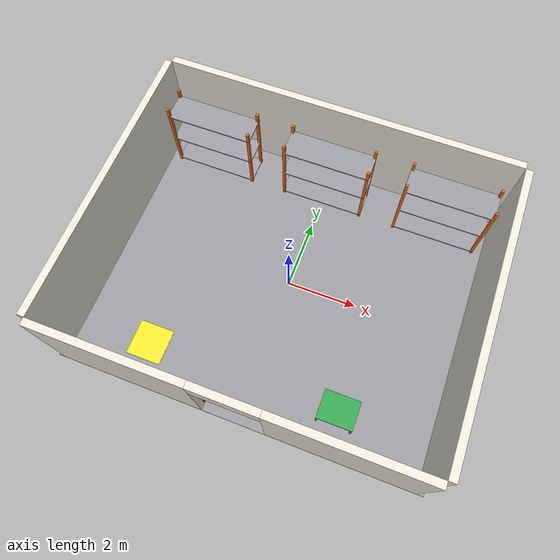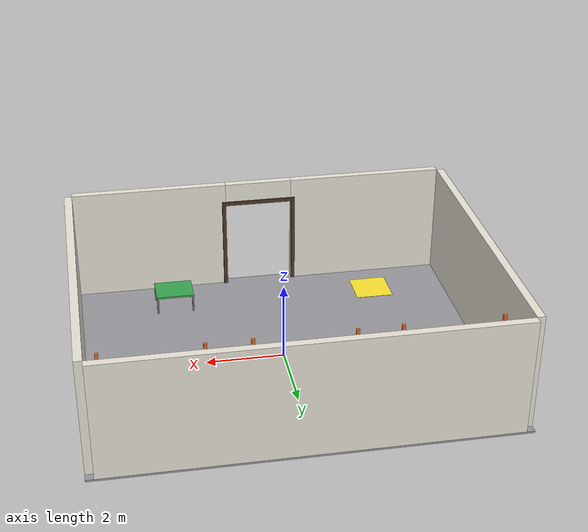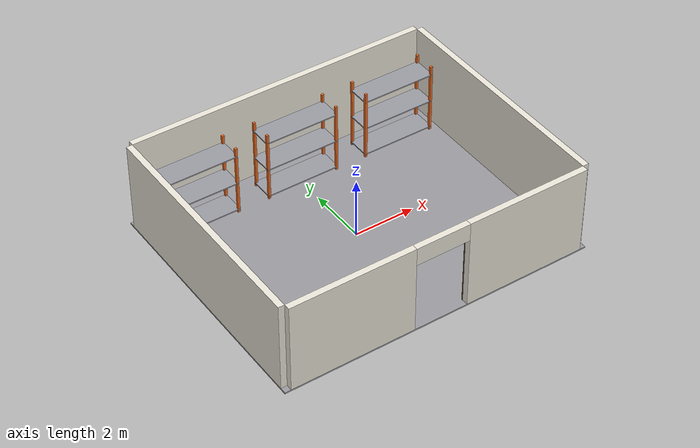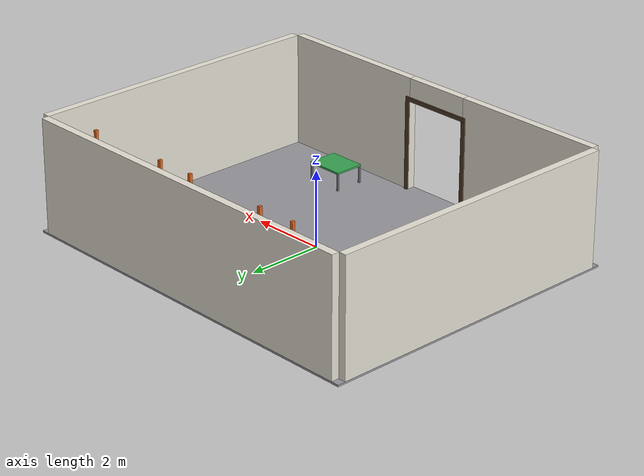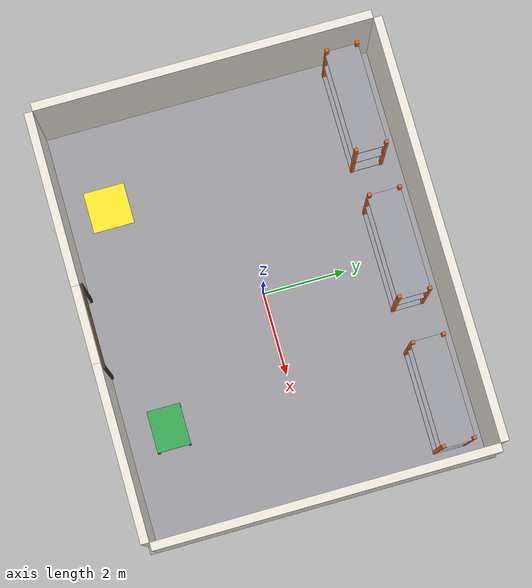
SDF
<?xml version="1.0" ?>
<sdf version="1.10">
  <world name="backroom">

    <physics name="1ms" type="ignored">
      <max_step_size>0.001</max_step_size>
      <real_time_factor>1.0</real_time_factor>
    </physics>

    <plugin filename="gz-sim-physics-system"           name="gz::sim::systems::Physics"/>
    <plugin filename="gz-sim-user-commands-system"     name="gz::sim::systems::UserCommands"/>
    <plugin filename="gz-sim-scene-broadcaster-system" name="gz::sim::systems::SceneBroadcaster"/>
    <plugin filename="gz-sim-sensors-system"           name="gz::sim::systems::Sensors">
      <render_engine>ogre2</render_engine>
    </plugin>

    <light type="directional" name="sun">
      <cast_shadows>true</cast_shadows>
      <pose>0 0 10 0 0 0</pose>
      <diffuse>0.9 0.9 0.9 1</diffuse>
      <specular>0.2 0.2 0.2 1</specular>
      <direction>-0.3 0.2 -0.9</direction>
    </light>

    <light type="point" name="ceiling_light_north">
      <pose>0 2 2.9 0 0 0</pose>
      <diffuse>0.9 0.9 0.85 1</diffuse>
      <specular>0.1 0.1 0.1 1</specular>
      <attenuation>
        <range>15</range>
        <constant>0.4</constant>
        <linear>0.05</linear>
        <quadratic>0.01</quadratic>
      </attenuation>
      <cast_shadows>false</cast_shadows>
    </light>

    <light type="point" name="ceiling_light_south">
      <pose>0 -2 2.9 0 0 0</pose>
      <diffuse>0.9 0.9 0.85 1</diffuse>
      <specular>0.1 0.1 0.1 1</specular>
      <attenuation>
        <range>15</range>
        <constant>0.4</constant>
        <linear>0.05</linear>
        <quadratic>0.01</quadratic>
      </attenuation>
      <cast_shadows>false</cast_shadows>
    </light>

    <model name="floor">
      <static>true</static>
      <pose>0 0 -0.025 0 0 0</pose>
      <link name="link">
        <collision name="collision">
          <geometry><box><size>10.4 8.4 0.05</size></box></geometry>
          <surface>
            <friction>
              <ode>
                <mu>1.0</mu>
                <mu2>1.0</mu2>
              </ode>
            </friction>
          </surface>
        </collision>
        <visual name="visual">
          <geometry><box><size>10.4 8.4 0.05</size></box></geometry>
          <material>
            <ambient>0.55 0.55 0.58 1</ambient>
            <diffuse>0.60 0.60 0.62 1</diffuse>
            <specular>0.05 0.05 0.05 1</specular>
          </material>
        </visual>
      </link>
    </model>

    <model name="walls">
      <static>true</static>

      <!-- North wall (back wall behind the shelves) -->
      <link name="north_wall">
        <pose>0 4.1 1.5 0 0 0</pose>
        <collision name="collision">
          <geometry><box><size>10.0 0.2 3.0</size></box></geometry>
        </collision>
        <visual name="visual">
          <geometry><box><size>10.0 0.2 3.0</size></box></geometry>
          <material>
            <ambient>0.92 0.90 0.85 1</ambient>
            <diffuse>0.92 0.90 0.85 1</diffuse>
          </material>
        </visual>
      </link>

      <!-- East wall (right wall when facing +Y) -->
      <link name="east_wall">
        <pose>5.1 0 1.5 0 0 0</pose>
        <collision name="collision">
          <geometry><box><size>0.2 8.0 3.0</size></box></geometry>
        </collision>
        <visual name="visual">
          <geometry><box><size>0.2 8.0 3.0</size></box></geometry>
          <material>
            <ambient>0.92 0.90 0.85 1</ambient>
            <diffuse>0.92 0.90 0.85 1</diffuse>
          </material>
        </visual>
      </link>

      <!-- West wall (left wall when facing +Y) -->
      <link name="west_wall">
        <pose>-5.1 0 1.5 0 0 0</pose>
        <collision name="collision">
          <geometry><box><size>0.2 8.0 3.0</size></box></geometry>
        </collision>
        <visual name="visual">
          <geometry><box><size>0.2 8.0 3.0</size></box></geometry>
          <material>
            <ambient>0.92 0.90 0.85 1</ambient>
            <diffuse>0.92 0.90 0.85 1</diffuse>
          </material>
        </visual>
      </link>

      <!-- South wall, left of the door (x in [-5.0, -0.9]) -->
      <link name="south_wall_left">
        <pose>-2.95 -4.1 1.5 0 0 0</pose>
        <collision name="collision">
          <geometry><box><size>4.1 0.2 3.0</size></box></geometry>
        </collision>
        <visual name="visual">
          <geometry><box><size>4.1 0.2 3.0</size></box></geometry>
          <material>
            <ambient>0.92 0.90 0.85 1</ambient>
            <diffuse>0.92 0.90 0.85 1</diffuse>
          </material>
        </visual>
      </link>

      <!-- South wall, right of the door (x in [+0.9, +5.0]) -->
      <link name="south_wall_right">
        <pose>2.95 -4.1 1.5 0 0 0</pose>
        <collision name="collision">
          <geometry><box><size>4.1 0.2 3.0</size></box></geometry>
        </collision>
        <visual name="visual">
          <geometry><box><size>4.1 0.2 3.0</size></box></geometry>
          <material>
            <ambient>0.92 0.90 0.85 1</ambient>
            <diffuse>0.92 0.90 0.85 1</diffuse>
          </material>
        </visual>
      </link>

      <!-- Lintel above the door (z in [2.4, 3.0]) -->
      <link name="south_wall_lintel">
        <pose>0 -4.1 2.7 0 0 0</pose>
        <collision name="collision">
          <geometry><box><size>1.8 0.2 0.6</size></box></geometry>
        </collision>
        <visual name="visual">
          <geometry><box><size>1.8 0.2 0.6</size></box></geometry>
          <material>
            <ambient>0.92 0.90 0.85 1</ambient>
            <diffuse>0.92 0.90 0.85 1</diffuse>
          </material>
        </visual>
      </link>
    </model>

    <model name="door_frame">
      <static>true</static>

      <!-- Left jamb -->
      <link name="jamb_left">
        <pose>-0.95 -3.975 1.2 0 0 0</pose>
        <visual name="visual">
          <geometry><box><size>0.1 0.05 2.4</size></box></geometry>
          <material>
            <ambient>0.25 0.18 0.12 1</ambient>
            <diffuse>0.30 0.22 0.15 1</diffuse>
          </material>
        </visual>
      </link>

      <!-- Right jamb -->
      <link name="jamb_right">
        <pose>0.95 -3.975 1.2 0 0 0</pose>
        <visual name="visual">
          <geometry><box><size>0.1 0.05 2.4</size></box></geometry>
          <material>
            <ambient>0.25 0.18 0.12 1</ambient>
            <diffuse>0.30 0.22 0.15 1</diffuse>
          </material>
        </visual>
      </link>

      <!-- Header -->
      <link name="header">
        <pose>0 -3.975 2.45 0 0 0</pose>
        <visual name="visual">
          <geometry><box><size>2.0 0.05 0.1</size></box></geometry>
          <material>
            <ambient>0.25 0.18 0.12 1</ambient>
            <diffuse>0.30 0.22 0.15 1</diffuse>
          </material>
        </visual>
      </link>
    </model>

    <model name="rack_left">
      <static>true</static>
      <pose>-3.5 3.2 0 0 0 0</pose>

      <!-- Uprights (steel orange) -->
      <link name="upright_fl">
        <pose>-1.21 -0.36 1.2 0 0 0</pose>
        <collision name="collision"><geometry><box><size>0.08 0.08 2.4</size></box></geometry></collision>
        <visual name="visual">
          <geometry><box><size>0.08 0.08 2.4</size></box></geometry>
          <material><ambient>0.85 0.35 0.10 1</ambient><diffuse>0.90 0.40 0.12 1</diffuse></material>
        </visual>
      </link>
      <link name="upright_fr">
        <pose>1.21 -0.36 1.2 0 0 0</pose>
        <collision name="collision"><geometry><box><size>0.08 0.08 2.4</size></box></geometry></collision>
        <visual name="visual">
          <geometry><box><size>0.08 0.08 2.4</size></box></geometry>
          <material><ambient>0.85 0.35 0.10 1</ambient><diffuse>0.90 0.40 0.12 1</diffuse></material>
        </visual>
      </link>
      <link name="upright_bl">
        <pose>-1.21 0.36 1.2 0 0 0</pose>
        <collision name="collision"><geometry><box><size>0.08 0.08 2.4</size></box></geometry></collision>
        <visual name="visual">
          <geometry><box><size>0.08 0.08 2.4</size></box></geometry>
          <material><ambient>0.85 0.35 0.10 1</ambient><diffuse>0.90 0.40 0.12 1</diffuse></material>
        </visual>
      </link>
      <link name="upright_br">
        <pose>1.21 0.36 1.2 0 0 0</pose>
        <collision name="collision"><geometry><box><size>0.08 0.08 2.4</size></box></geometry></collision>
        <visual name="visual">
          <geometry><box><size>0.08 0.08 2.4</size></box></geometry>
          <material><ambient>0.85 0.35 0.10 1</ambient><diffuse>0.90 0.40 0.12 1</diffuse></material>
        </visual>
      </link>

      <!-- Horizontal decks (medium-grey steel) -->
      <link name="deck_bottom">
        <pose>0 0 0.10 0 0 0</pose>
        <collision name="collision"><geometry><box><size>2.5 0.8 0.04</size></box></geometry></collision>
        <visual name="visual">
          <geometry><box><size>2.5 0.8 0.04</size></box></geometry>
          <material><ambient>0.55 0.55 0.58 1</ambient><diffuse>0.60 0.60 0.63 1</diffuse></material>
        </visual>
      </link>
      <link name="deck_mid">
        <pose>0 0 1.10 0 0 0</pose>
        <collision name="collision"><geometry><box><size>2.5 0.8 0.04</size></box></geometry></collision>
        <visual name="visual">
          <geometry><box><size>2.5 0.8 0.04</size></box></geometry>
          <material><ambient>0.55 0.55 0.58 1</ambient><diffuse>0.60 0.60 0.63 1</diffuse></material>
        </visual>
      </link>
      <link name="deck_top">
        <pose>0 0 2.10 0 0 0</pose>
        <collision name="collision"><geometry><box><size>2.5 0.8 0.04</size></box></geometry></collision>
        <visual name="visual">
          <geometry><box><size>2.5 0.8 0.04</size></box></geometry>
          <material><ambient>0.55 0.55 0.58 1</ambient><diffuse>0.60 0.60 0.63 1</diffuse></material>
        </visual>
      </link>
    </model>

    <model name="rack_center">
      <static>true</static>
      <pose>0 3.2 0 0 0 0</pose>

      <link name="upright_fl">
        <pose>-1.21 -0.36 1.2 0 0 0</pose>
        <collision name="collision"><geometry><box><size>0.08 0.08 2.4</size></box></geometry></collision>
        <visual name="visual">
          <geometry><box><size>0.08 0.08 2.4</size></box></geometry>
          <material><ambient>0.85 0.35 0.10 1</ambient><diffuse>0.90 0.40 0.12 1</diffuse></material>
        </visual>
      </link>
      <link name="upright_fr">
        <pose>1.21 -0.36 1.2 0 0 0</pose>
        <collision name="collision"><geometry><box><size>0.08 0.08 2.4</size></box></geometry></collision>
        <visual name="visual">
          <geometry><box><size>0.08 0.08 2.4</size></box></geometry>
          <material><ambient>0.85 0.35 0.10 1</ambient><diffuse>0.90 0.40 0.12 1</diffuse></material>
        </visual>
      </link>
      <link name="upright_bl">
        <pose>-1.21 0.36 1.2 0 0 0</pose>
        <collision name="collision"><geometry><box><size>0.08 0.08 2.4</size></box></geometry></collision>
        <visual name="visual">
          <geometry><box><size>0.08 0.08 2.4</size></box></geometry>
          <material><ambient>0.85 0.35 0.10 1</ambient><diffuse>0.90 0.40 0.12 1</diffuse></material>
        </visual>
      </link>
      <link name="upright_br">
        <pose>1.21 0.36 1.2 0 0 0</pose>
        <collision name="collision"><geometry><box><size>0.08 0.08 2.4</size></box></geometry></collision>
        <visual name="visual">
          <geometry><box><size>0.08 0.08 2.4</size></box></geometry>
          <material><ambient>0.85 0.35 0.10 1</ambient><diffuse>0.90 0.40 0.12 1</diffuse></material>
        </visual>
      </link>

      <link name="deck_bottom">
        <pose>0 0 0.10 0 0 0</pose>
        <collision name="collision"><geometry><box><size>2.5 0.8 0.04</size></box></geometry></collision>
        <visual name="visual">
          <geometry><box><size>2.5 0.8 0.04</size></box></geometry>
          <material><ambient>0.55 0.55 0.58 1</ambient><diffuse>0.60 0.60 0.63 1</diffuse></material>
        </visual>
      </link>
      <link name="deck_mid">
        <pose>0 0 1.10 0 0 0</pose>
        <collision name="collision"><geometry><box><size>2.5 0.8 0.04</size></box></geometry></collision>
        <visual name="visual">
          <geometry><box><size>2.5 0.8 0.04</size></box></geometry>
          <material><ambient>0.55 0.55 0.58 1</ambient><diffuse>0.60 0.60 0.63 1</diffuse></material>
        </visual>
      </link>
      <link name="deck_top">
        <pose>0 0 2.10 0 0 0</pose>
        <collision name="collision"><geometry><box><size>2.5 0.8 0.04</size></box></geometry></collision>
        <visual name="visual">
          <geometry><box><size>2.5 0.8 0.04</size></box></geometry>
          <material><ambient>0.55 0.55 0.58 1</ambient><diffuse>0.60 0.60 0.63 1</diffuse></material>
        </visual>
      </link>
    </model>

    <model name="rack_right">
      <static>true</static>
      <pose>3.5 3.2 0 0 0 0</pose>

      <link name="upright_fl">
        <pose>-1.21 -0.36 1.2 0 0 0</pose>
        <collision name="collision"><geometry><box><size>0.08 0.08 2.4</size></box></geometry></collision>
        <visual name="visual">
          <geometry><box><size>0.08 0.08 2.4</size></box></geometry>
          <material><ambient>0.85 0.35 0.10 1</ambient><diffuse>0.90 0.40 0.12 1</diffuse></material>
        </visual>
      </link>
      <link name="upright_fr">
        <pose>1.21 -0.36 1.2 0 0 0</pose>
        <collision name="collision"><geometry><box><size>0.08 0.08 2.4</size></box></geometry></collision>
        <visual name="visual">
          <geometry><box><size>0.08 0.08 2.4</size></box></geometry>
          <material><ambient>0.85 0.35 0.10 1</ambient><diffuse>0.90 0.40 0.12 1</diffuse></material>
        </visual>
      </link>
      <link name="upright_bl">
        <pose>-1.21 0.36 1.2 0 0 0</pose>
        <collision name="collision"><geometry><box><size>0.08 0.08 2.4</size></box></geometry></collision>
        <visual name="visual">
          <geometry><box><size>0.08 0.08 2.4</size></box></geometry>
          <material><ambient>0.85 0.35 0.10 1</ambient><diffuse>0.90 0.40 0.12 1</diffuse></material>
        </visual>
      </link>
      <link name="upright_br">
        <pose>1.21 0.36 1.2 0 0 0</pose>
        <collision name="collision"><geometry><box><size>0.08 0.08 2.4</size></box></geometry></collision>
        <visual name="visual">
          <geometry><box><size>0.08 0.08 2.4</size></box></geometry>
          <material><ambient>0.85 0.35 0.10 1</ambient><diffuse>0.90 0.40 0.12 1</diffuse></material>
        </visual>
      </link>

      <link name="deck_bottom">
        <pose>0 0 0.10 0 0 0</pose>
        <collision name="collision"><geometry><box><size>2.5 0.8 0.04</size></box></geometry></collision>
        <visual name="visual">
          <geometry><box><size>2.5 0.8 0.04</size></box></geometry>
          <material><ambient>0.55 0.55 0.58 1</ambient><diffuse>0.60 0.60 0.63 1</diffuse></material>
        </visual>
      </link>
      <link name="deck_mid">
        <pose>0 0 1.10 0 0 0</pose>
        <collision name="collision"><geometry><box><size>2.5 0.8 0.04</size></box></geometry></collision>
        <visual name="visual">
          <geometry><box><size>2.5 0.8 0.04</size></box></geometry>
          <material><ambient>0.55 0.55 0.58 1</ambient><diffuse>0.60 0.60 0.63 1</diffuse></material>
        </visual>
      </link>
      <link name="deck_top">
        <pose>0 0 2.10 0 0 0</pose>
        <collision name="collision"><geometry><box><size>2.5 0.8 0.04</size></box></geometry></collision>
        <visual name="visual">
          <geometry><box><size>2.5 0.8 0.04</size></box></geometry>
          <material><ambient>0.55 0.55 0.58 1</ambient><diffuse>0.60 0.60 0.63 1</diffuse></material>
        </visual>
      </link>
    </model>

    <model name="robot_home_marker">
      <static>true</static>
      <pose>-3.0 -3.0 0.0025 0 0 0</pose>
      <link name="link">
        <collision name="collision">
          <geometry><box><size>1.0 1.0 0.005</size></box></geometry>
        </collision>
        <visual name="visual">
          <geometry><box><size>1.0 1.0 0.005</size></box></geometry>
          <material>
            <ambient>0.95 0.85 0.15 1</ambient>
            <diffuse>1.00 0.90 0.18 1</diffuse>
          </material>
        </visual>
      </link>
    </model>

    <model name="drop_station">
      <static>true</static>
      <pose>2.5 -3.0 0 0 0 0</pose>

      <!-- Tabletop (top surface at z = 0.5) -->
      <link name="top">
        <pose>0 0 0.475 0 0 0</pose>
        <collision name="collision"><geometry><box><size>1.0 0.8 0.05</size></box></geometry></collision>
        <visual name="visual">
          <geometry><box><size>1.0 0.8 0.05</size></box></geometry>
          <material>
            <ambient>0.20 0.60 0.30 1</ambient>
            <diffuse>0.22 0.65 0.32 1</diffuse>
          </material>
        </visual>
      </link>

      <!-- Four legs -->
      <link name="leg_fl">
        <pose>-0.475 -0.375 0.225 0 0 0</pose>
        <collision name="collision"><geometry><box><size>0.05 0.05 0.45</size></box></geometry></collision>
        <visual name="visual">
          <geometry><box><size>0.05 0.05 0.45</size></box></geometry>
          <material><ambient>0.40 0.40 0.42 1</ambient><diffuse>0.45 0.45 0.47 1</diffuse></material>
        </visual>
      </link>
      <link name="leg_fr">
        <pose>0.475 -0.375 0.225 0 0 0</pose>
        <collision name="collision"><geometry><box><size>0.05 0.05 0.45</size></box></geometry></collision>
        <visual name="visual">
          <geometry><box><size>0.05 0.05 0.45</size></box></geometry>
          <material><ambient>0.40 0.40 0.42 1</ambient><diffuse>0.45 0.45 0.47 1</diffuse></material>
        </visual>
      </link>
      <link name="leg_bl">
        <pose>-0.475 0.375 0.225 0 0 0</pose>
        <collision name="collision"><geometry><box><size>0.05 0.05 0.45</size></box></geometry></collision>
        <visual name="visual">
          <geometry><box><size>0.05 0.05 0.45</size></box></geometry>
          <material><ambient>0.40 0.40 0.42 1</ambient><diffuse>0.45 0.45 0.47 1</diffuse></material>
        </visual>
      </link>
      <link name="leg_br">
        <pose>0.475 0.375 0.225 0 0 0</pose>
        <collision name="collision"><geometry><box><size>0.05 0.05 0.45</size></box></geometry></collision>
        <visual name="visual">
          <geometry><box><size>0.05 0.05 0.45</size></box></geometry>
          <material><ambient>0.40 0.40 0.42 1</ambient><diffuse>0.45 0.45 0.47 1</diffuse></material>
        </visual>
      </link>
    </model>

  </world>
</sdf>
